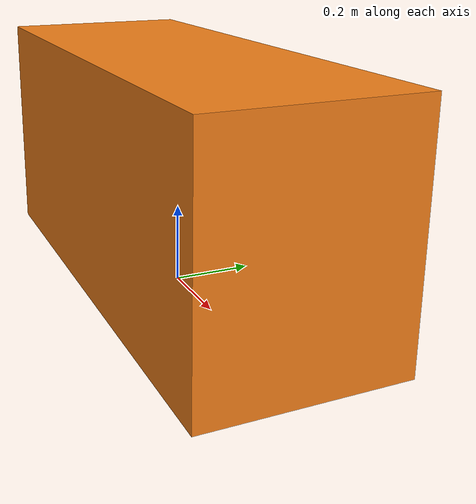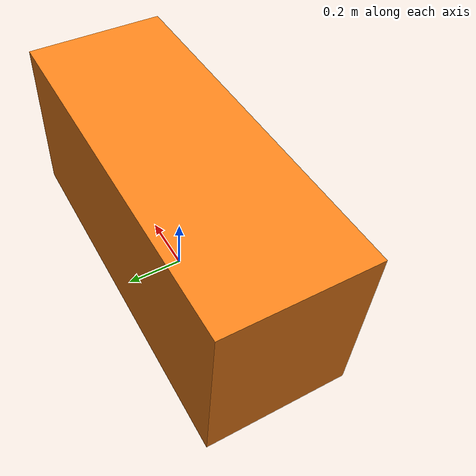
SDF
<?xml version="1.0"?>
<sdf version="1.7">
  <model name="xgc2_geom_cuboid">
    <link name="body">
      <kinematic>true</kinematic>
      <gravity>false</gravity>
      <collision name="cuboid">
        <pose>0 0 0.3 0 0 0</pose>
        <geometry><box><size>1.3 0.5 0.6</size></box></geometry>
      </collision>
      <visual name="cuboid">
        <pose>0 0 0.3 0 0 0</pose>
        <geometry><box><size>1.3 0.5 0.6</size></box></geometry>
        <material><ambient>0.95 0.5 0.1 1</ambient><diffuse>0.95 0.5 0.1 1</diffuse></material>
      </visual>
    </link>
  </model>
</sdf>
